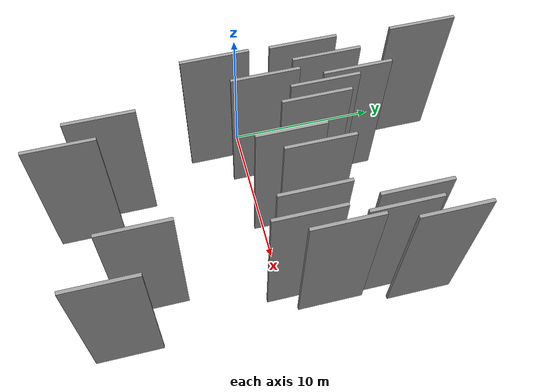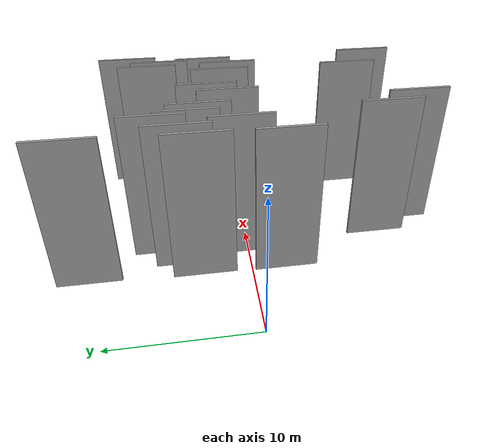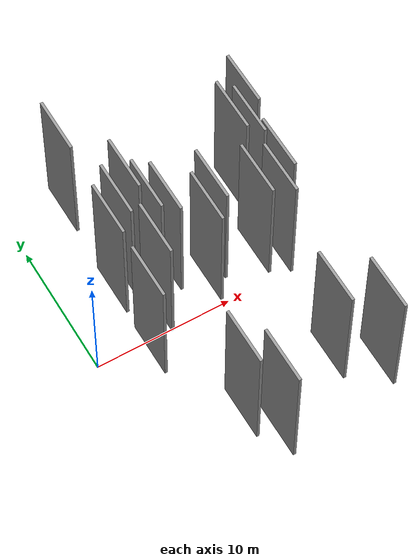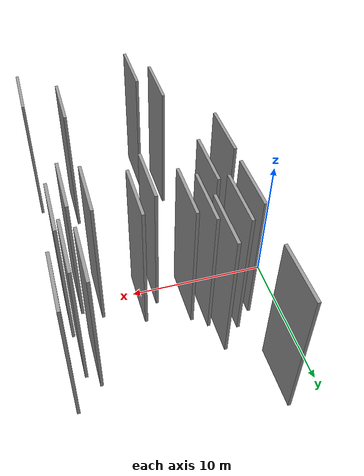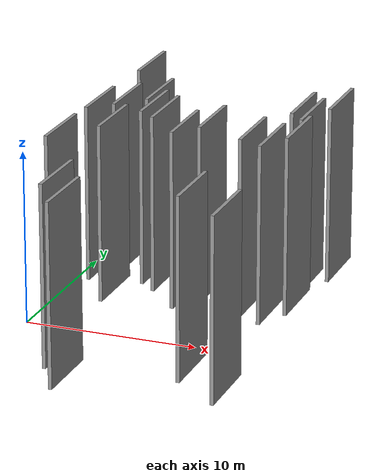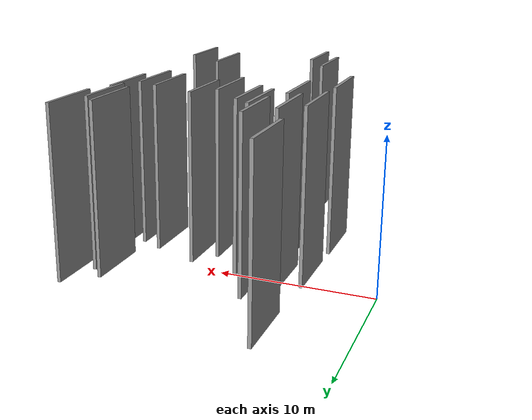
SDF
<sdf version="1.6">
 <world name="default">
  <scene>
   <sky><clouds><speed>12</speed></clouds></sky>
   <ambient>0.4 0.4 0.4 1</ambient>
   <background>0.7 0.7 0.7 1</background>
   <shadows>1</shadows>
  </scene>
  <gravity>0 0 -9.8066</gravity>
  <magnetic_field>6e-06 2.3e-05 -4.2e-05</magnetic_field>
  <physics default="0" name="default_physics" type="ode">
   <ode>
    <solver>
     <type>quick</type>
     <iters>10</iters>
     <sor>1.0</sor>
     <use_dynamic_moi_rescaling>0</use_dynamic_moi_rescaling>
    </solver>
    <constraints>
     <cfm>0</cfm>
     <erp>0.2</erp>
     <contact_max_correcting_vel>100</contact_max_correcting_vel>
     <contact_surface_layer>0.001</contact_surface_layer>
    </constraints>
   </ode>
   <max_step_size>0.004</max_step_size>
   <real_time_factor>1</real_time_factor>
   <real_time_update_rate>250</real_time_update_rate>
  </physics>
  <light name="sun" type="directional">
   <pose>0 0 10 0 0 0</pose>
   <diffuse>0.8 0.8 0.8 1</diffuse>
   <specular>0.2 0.2 0.2 1</specular>
   <attenuation>
    <range>1000</range>
    <constant>0.9</constant>
    <linear>0.01</linear>
    <quadratic>0.001</quadratic>
   </attenuation>
   <direction>-0.5 0.1 -0.9</direction>
  </light>
  <model name="grey_wall_1">
   <static>1</static>
   <pose>4.3044 4.4478 2.5 0.000000 0.000000 1.570796</pose>
   <link name="link">
    <pose>0 0 5.00 0 0 0</pose>
    <collision name="collision"><geometry><box><size>4.00 0.2 10.00</size></box></geometry></collision>
    <visual name="visual">
     <cast_shadows>0</cast_shadows>
     <geometry><box><size>4.00 0.2 10.00</size></box></geometry>
     <material>
      <script>
       <uri>model://grey_wall/materials/scripts</uri>
       <uri>model://grey_wall/materials/textures</uri>
       <name>vrc/grey_wall</name>
      </script>
     </material>
    </visual>
   </link>
  </model>
  <model name="grey_wall_2">
   <static>1</static>
   <pose>4.9974 0.6891 2.5 0.000000 0.000000 1.570796</pose>
   <link name="link">
    <pose>0 0 5.00 0 0 0</pose>
    <collision name="collision"><geometry><box><size>4.00 0.2 10.00</size></box></geometry></collision>
    <visual name="visual">
     <cast_shadows>0</cast_shadows>
     <geometry><box><size>4.00 0.2 10.00</size></box></geometry>
     <material>
      <script>
       <uri>model://grey_wall/materials/scripts</uri>
       <uri>model://grey_wall/materials/textures</uri>
       <name>vrc/grey_wall</name>
      </script>
     </material>
    </visual>
   </link>
  </model>
  <model name="grey_wall_3">
   <static>1</static>
   <pose>3.0500 -1.7986 2.5 0.000000 0.000000 1.570796</pose>
   <link name="link">
    <pose>0 0 5.00 0 0 0</pose>
    <collision name="collision"><geometry><box><size>4.00 0.2 10.00</size></box></geometry></collision>
    <visual name="visual">
     <cast_shadows>0</cast_shadows>
     <geometry><box><size>4.00 0.2 10.00</size></box></geometry>
     <material>
      <script>
       <uri>model://grey_wall/materials/scripts</uri>
       <uri>model://grey_wall/materials/textures</uri>
       <name>vrc/grey_wall</name>
      </script>
     </material>
    </visual>
   </link>
  </model>
  <model name="grey_wall_4">
   <static>1</static>
   <pose>6.1408 3.8386 2.5 0.000000 0.000000 1.570796</pose>
   <link name="link">
    <pose>0 0 5.00 0 0 0</pose>
    <collision name="collision"><geometry><box><size>4.00 0.2 10.00</size></box></geometry></collision>
    <visual name="visual">
     <cast_shadows>0</cast_shadows>
     <geometry><box><size>4.00 0.2 10.00</size></box></geometry>
     <material>
      <script>
       <uri>model://grey_wall/materials/scripts</uri>
       <uri>model://grey_wall/materials/textures</uri>
       <name>vrc/grey_wall</name>
      </script>
     </material>
    </visual>
   </link>
  </model>
  <model name="grey_wall_5">
   <static>1</static>
   <pose>10.0434 2.4014 2.5 0.000000 0.000000 1.570796</pose>
   <link name="link">
    <pose>0 0 5.00 0 0 0</pose>
    <collision name="collision"><geometry><box><size>4.00 0.2 10.00</size></box></geometry></collision>
    <visual name="visual">
     <cast_shadows>0</cast_shadows>
     <geometry><box><size>4.00 0.2 10.00</size></box></geometry>
     <material>
      <script>
       <uri>model://grey_wall/materials/scripts</uri>
       <uri>model://grey_wall/materials/textures</uri>
       <name>vrc/grey_wall</name>
      </script>
     </material>
    </visual>
   </link>
  </model>
  <model name="grey_wall_6">
   <static>1</static>
   <pose>5.8024 -8.7024 2.5 0.000000 0.000000 1.570796</pose>
   <link name="link">
    <pose>0 0 5.00 0 0 0</pose>
    <collision name="collision"><geometry><box><size>4.00 0.2 10.00</size></box></geometry></collision>
    <visual name="visual">
     <cast_shadows>0</cast_shadows>
     <geometry><box><size>4.00 0.2 10.00</size></box></geometry>
     <material>
      <script>
       <uri>model://grey_wall/materials/scripts</uri>
       <uri>model://grey_wall/materials/textures</uri>
       <name>vrc/grey_wall</name>
      </script>
     </material>
    </visual>
   </link>
  </model>
  <model name="grey_wall_7">
   <static>1</static>
   <pose>3.3330 10.5490 2.5 0.000000 0.000000 1.570796</pose>
   <link name="link">
    <pose>0 0 5.00 0 0 0</pose>
    <collision name="collision"><geometry><box><size>4.00 0.2 10.00</size></box></geometry></collision>
    <visual name="visual">
     <cast_shadows>0</cast_shadows>
     <geometry><box><size>4.00 0.2 10.00</size></box></geometry>
     <material>
      <script>
       <uri>model://grey_wall/materials/scripts</uri>
       <uri>model://grey_wall/materials/textures</uri>
       <name>vrc/grey_wall</name>
      </script>
     </material>
    </visual>
   </link>
  </model>
  <model name="grey_wall_8">
   <static>1</static>
   <pose>12.7370 1.3016 2.5 0.000000 0.000000 1.570796</pose>
   <link name="link">
    <pose>0 0 5.00 0 0 0</pose>
    <collision name="collision"><geometry><box><size>4.00 0.2 10.00</size></box></geometry></collision>
    <visual name="visual">
     <cast_shadows>0</cast_shadows>
     <geometry><box><size>4.00 0.2 10.00</size></box></geometry>
     <material>
      <script>
       <uri>model://grey_wall/materials/scripts</uri>
       <uri>model://grey_wall/materials/textures</uri>
       <name>vrc/grey_wall</name>
      </script>
     </material>
    </visual>
   </link>
  </model>
  <model name="grey_wall_9">
   <static>1</static>
   <pose>7.1358 -10.9768 2.5 0.000000 0.000000 1.570796</pose>
   <link name="link">
    <pose>0 0 5.00 0 0 0</pose>
    <collision name="collision"><geometry><box><size>4.00 0.2 10.00</size></box></geometry></collision>
    <visual name="visual">
     <cast_shadows>0</cast_shadows>
     <geometry><box><size>4.00 0.2 10.00</size></box></geometry>
     <material>
      <script>
       <uri>model://grey_wall/materials/scripts</uri>
       <uri>model://grey_wall/materials/textures</uri>
       <name>vrc/grey_wall</name>
      </script>
     </material>
    </visual>
   </link>
  </model>
  <model name="grey_wall_10">
   <static>1</static>
   <pose>14.9526 2.3204 2.5 0.000000 0.000000 1.570796</pose>
   <link name="link">
    <pose>0 0 5.00 0 0 0</pose>
    <collision name="collision"><geometry><box><size>4.00 0.2 10.00</size></box></geometry></collision>
    <visual name="visual">
     <cast_shadows>0</cast_shadows>
     <geometry><box><size>4.00 0.2 10.00</size></box></geometry>
     <material>
      <script>
       <uri>model://grey_wall/materials/scripts</uri>
       <uri>model://grey_wall/materials/textures</uri>
       <name>vrc/grey_wall</name>
      </script>
     </material>
    </visual>
   </link>
  </model>
  <model name="grey_wall_11">
   <static>1</static>
   <pose>3.1370 3.3829 2.5 0.000000 0.000000 1.570796</pose>
   <link name="link">
    <pose>0 0 5.00 0 0 0</pose>
    <collision name="collision"><geometry><box><size>4.00 0.2 10.00</size></box></geometry></collision>
    <visual name="visual">
     <cast_shadows>0</cast_shadows>
     <geometry><box><size>4.00 0.2 10.00</size></box></geometry>
     <material>
      <script>
       <uri>model://grey_wall/materials/scripts</uri>
       <uri>model://grey_wall/materials/textures</uri>
       <name>vrc/grey_wall</name>
      </script>
     </material>
    </visual>
   </link>
  </model>
  <model name="grey_wall_12">
   <static>1</static>
   <pose>14.0416 0.6361 2.5 0.000000 0.000000 1.570796</pose>
   <link name="link">
    <pose>0 0 5.00 0 0 0</pose>
    <collision name="collision"><geometry><box><size>4.00 0.2 10.00</size></box></geometry></collision>
    <visual name="visual">
     <cast_shadows>0</cast_shadows>
     <geometry><box><size>4.00 0.2 10.00</size></box></geometry>
     <material>
      <script>
       <uri>model://grey_wall/materials/scripts</uri>
       <uri>model://grey_wall/materials/textures</uri>
       <name>vrc/grey_wall</name>
      </script>
     </material>
    </visual>
   </link>
  </model>
  <model name="grey_wall_13">
   <static>1</static>
   <pose>7.0775 3.0799 2.5 0.000000 0.000000 1.570796</pose>
   <link name="link">
    <pose>0 0 5.00 0 0 0</pose>
    <collision name="collision"><geometry><box><size>4.00 0.2 10.00</size></box></geometry></collision>
    <visual name="visual">
     <cast_shadows>0</cast_shadows>
     <geometry><box><size>4.00 0.2 10.00</size></box></geometry>
     <material>
      <script>
       <uri>model://grey_wall/materials/scripts</uri>
       <uri>model://grey_wall/materials/textures</uri>
       <name>vrc/grey_wall</name>
      </script>
     </material>
    </visual>
   </link>
  </model>
  <model name="grey_wall_14">
   <static>1</static>
   <pose>8.9566 1.1129 2.5 0.000000 0.000000 1.570796</pose>
   <link name="link">
    <pose>0 0 5.00 0 0 0</pose>
    <collision name="collision"><geometry><box><size>4.00 0.2 10.00</size></box></geometry></collision>
    <visual name="visual">
     <cast_shadows>0</cast_shadows>
     <geometry><box><size>4.00 0.2 10.00</size></box></geometry>
     <material>
      <script>
       <uri>model://grey_wall/materials/scripts</uri>
       <uri>model://grey_wall/materials/textures</uri>
       <name>vrc/grey_wall</name>
      </script>
     </material>
    </visual>
   </link>
  </model>
  <model name="grey_wall_15">
   <static>1</static>
   <pose>5.6712 5.8677 2.5 0.000000 0.000000 1.570796</pose>
   <link name="link">
    <pose>0 0 5.00 0 0 0</pose>
    <collision name="collision"><geometry><box><size>4.00 0.2 10.00</size></box></geometry></collision>
    <visual name="visual">
     <cast_shadows>0</cast_shadows>
     <geometry><box><size>4.00 0.2 10.00</size></box></geometry>
     <material>
      <script>
       <uri>model://grey_wall/materials/scripts</uri>
       <uri>model://grey_wall/materials/textures</uri>
       <name>vrc/grey_wall</name>
      </script>
     </material>
    </visual>
   </link>
  </model>
  <model name="grey_wall_16">
   <static>1</static>
   <pose>15.5494 7.7361 2.5 0.000000 0.000000 1.570796</pose>
   <link name="link">
    <pose>0 0 5.00 0 0 0</pose>
    <collision name="collision"><geometry><box><size>4.00 0.2 10.00</size></box></geometry></collision>
    <visual name="visual">
     <cast_shadows>0</cast_shadows>
     <geometry><box><size>4.00 0.2 10.00</size></box></geometry>
     <material>
      <script>
       <uri>model://grey_wall/materials/scripts</uri>
       <uri>model://grey_wall/materials/textures</uri>
       <name>vrc/grey_wall</name>
      </script>
     </material>
    </visual>
   </link>
  </model>
  <model name="grey_wall_17">
   <static>1</static>
   <pose>15.3590 -9.8850 2.5 0.000000 0.000000 1.570796</pose>
   <link name="link">
    <pose>0 0 5.00 0 0 0</pose>
    <collision name="collision"><geometry><box><size>4.00 0.2 10.00</size></box></geometry></collision>
    <visual name="visual">
     <cast_shadows>0</cast_shadows>
     <geometry><box><size>4.00 0.2 10.00</size></box></geometry>
     <material>
      <script>
       <uri>model://grey_wall/materials/scripts</uri>
       <uri>model://grey_wall/materials/textures</uri>
       <name>vrc/grey_wall</name>
      </script>
     </material>
    </visual>
   </link>
  </model>
  <model name="grey_wall_18">
   <static>1</static>
   <pose>12.8026 -7.9146 2.5 0.000000 0.000000 1.570796</pose>
   <link name="link">
    <pose>0 0 5.00 0 0 0</pose>
    <collision name="collision"><geometry><box><size>4.00 0.2 10.00</size></box></geometry></collision>
    <visual name="visual">
     <cast_shadows>0</cast_shadows>
     <geometry><box><size>4.00 0.2 10.00</size></box></geometry>
     <material>
      <script>
       <uri>model://grey_wall/materials/scripts</uri>
       <uri>model://grey_wall/materials/textures</uri>
       <name>vrc/grey_wall</name>
      </script>
     </material>
    </visual>
   </link>
  </model>
  <model name="grey_wall_19">
   <static>1</static>
   <pose>14.6626 5.4734 2.5 0.000000 0.000000 1.570796</pose>
   <link name="link">
    <pose>0 0 5.00 0 0 0</pose>
    <collision name="collision"><geometry><box><size>4.00 0.2 10.00</size></box></geometry></collision>
    <visual name="visual">
     <cast_shadows>0</cast_shadows>
     <geometry><box><size>4.00 0.2 10.00</size></box></geometry>
     <material>
      <script>
       <uri>model://grey_wall/materials/scripts</uri>
       <uri>model://grey_wall/materials/textures</uri>
       <name>vrc/grey_wall</name>
      </script>
     </material>
    </visual>
   </link>
  </model>
  <model name="grey_wall_20">
   <static>1</static>
   <pose>13.8625 6.3239 2.5 0.000000 0.000000 1.570796</pose>
   <link name="link">
    <pose>0 0 5.00 0 0 0</pose>
    <collision name="collision"><geometry><box><size>4.00 0.2 10.00</size></box></geometry></collision>
    <visual name="visual">
     <cast_shadows>0</cast_shadows>
     <geometry><box><size>4.00 0.2 10.00</size></box></geometry>
     <material>
      <script>
       <uri>model://grey_wall/materials/scripts</uri>
       <uri>model://grey_wall/materials/textures</uri>
       <name>vrc/grey_wall</name>
      </script>
     </material>
    </visual>
   </link>
  </model>
 </world>
</sdf>
